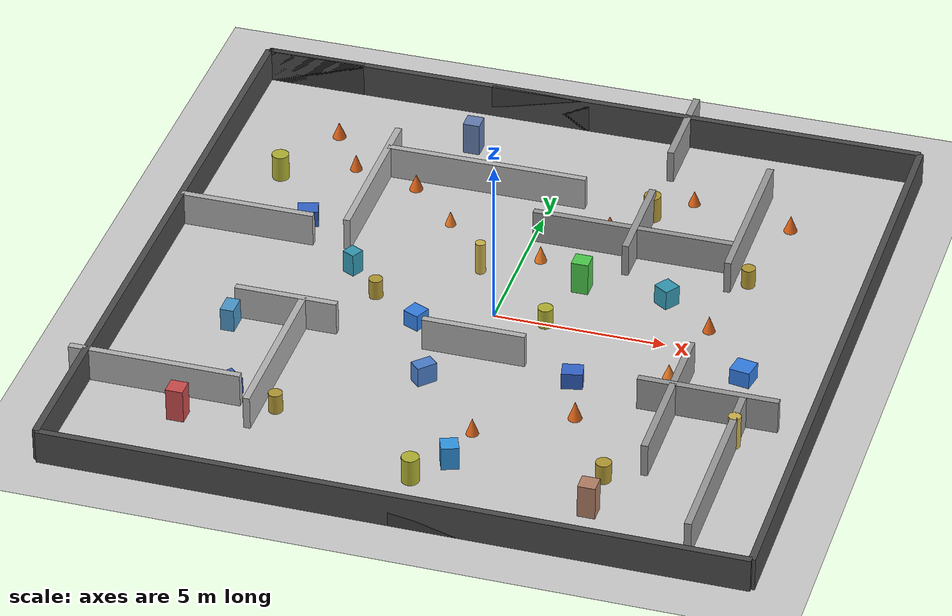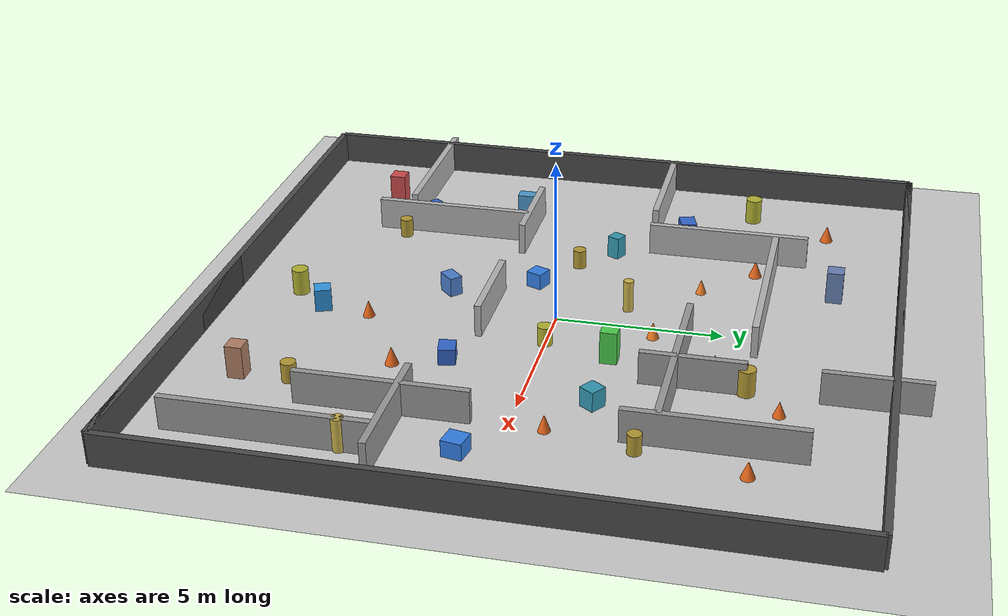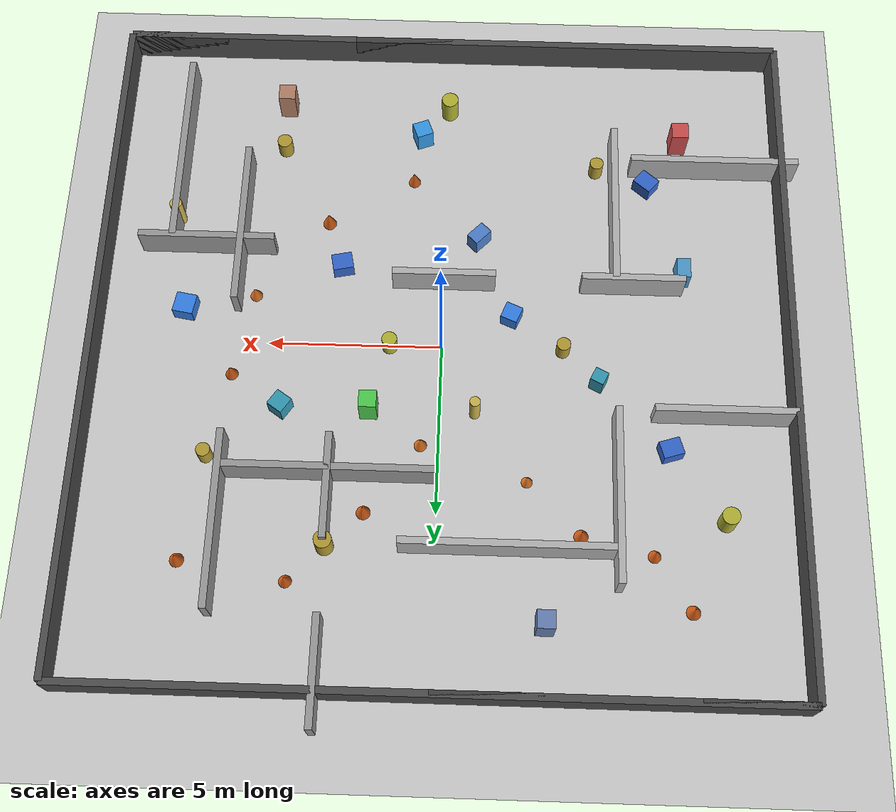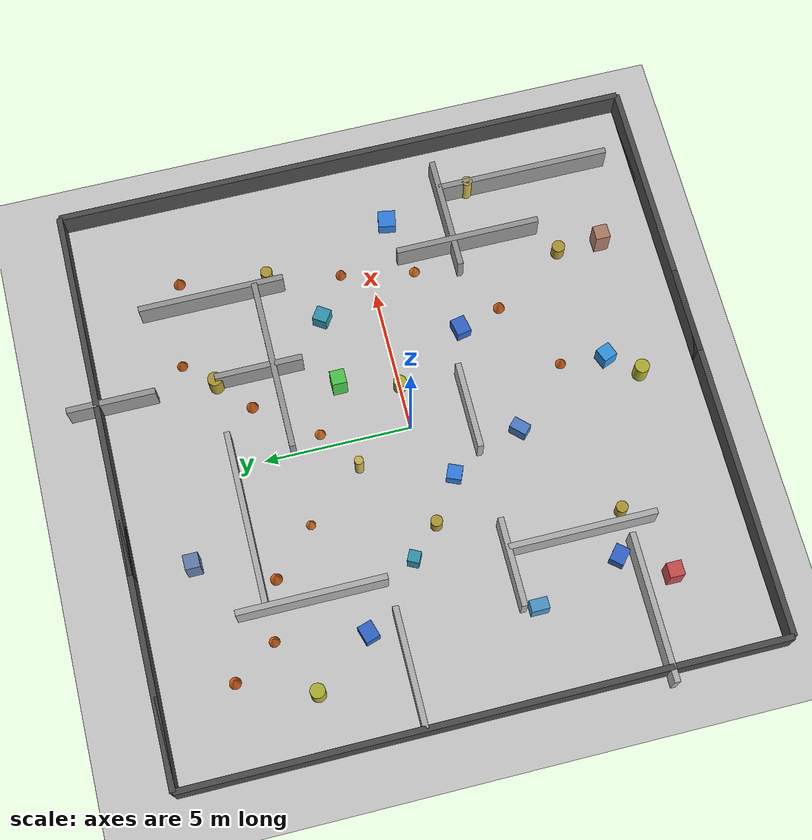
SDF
<?xml version="1.0" ?>
<sdf version="1.10">
  <world name="empty_with_lidar">

    <!-- Plugins -->
    <plugin filename="libgz-sim-physics-system.so" name="gz::sim::systems::Physics"/>
    <plugin filename="libgz-sim-user-commands-system.so" name="gz::sim::systems::UserCommands"/>
    <plugin filename="libgz-sim-scene-broadcaster-system.so" name="gz::sim::systems::SceneBroadcaster"/>
    <plugin filename="libgz-sim-imu-system.so" name="gz::sim::systems::Imu"/>
    <!-- Physics -->
    <physics name="1ms" type="ignored">
      <max_step_size>0.001</max_step_size>
      <real_time_factor>1.0</real_time_factor>
    </physics>

    <!-- Lighting -->
    <light type="directional" name="sun">
      <cast_shadows>true</cast_shadows>
      <pose>0 0 10 0 0 0</pose>
      <diffuse>0.8 0.8 0.8 1</diffuse>
      <specular>0.2 0.2 0.2 1</specular>
      <direction>-0.5 0.1 -0.9</direction>
    </light>

    <!-- Ground -->
    <model name='ground_plane'>
      <static>true</static>
      <link name='link'>
        <collision name='collision'>
          <geometry>
            <plane>
              <normal>0 0 1</normal>
              <size>100 100</size>
            </plane>
          </geometry>
          <surface>
            <friction>
              <ode>
                <mu>50</mu>
              </ode>
            </friction>
            <bounce/>
            <contact/>
          </surface>
        </collision>
        <visual name='visual'>
          <geometry>
            <plane>
              <normal>0 0 1</normal>
              <size>100 100</size>
            </plane>
          </geometry>
          <material>
            <ambient>0.800000012 0.800000012 0.800000012 1</ambient>
            <diffuse>0.800000012 0.800000012 0.800000012 1</diffuse>
            <specular>0.800000012 0.800000012 0.800000012 1</specular>
          </material>
        </visual>
        <pose>0 0 0 0 0 0</pose>
        <inertial>
          <pose>0 0 0 0 0 0</pose>
          <mass>1</mass>
          <inertia>
            <ixx>1</ixx>
            <ixy>0</ixy>
            <ixz>0</ixz>
            <iyy>1</iyy>
            <iyz>0</iyz>
            <izz>1</izz>
          </inertia>
        </inertial>
        <enable_wind>false</enable_wind>
      </link>
      <pose>0 0 0 0 0 0</pose>
      <self_collide>false</self_collide>
    </model>

    <!-- Maze -->
    <model name="maze_env">
      <static>true</static>

      <!-- Perimeter walls -->
      <link name="wall_north"><pose>0 10 0.5 0 0 0</pose><collision name="col"><geometry><box><size>20 0.2 1</size></box></geometry></collision><visual name="vis"><geometry><box><size>20 0.2 1</size></box></geometry><material><diffuse>0.3 0.3 0.3 1</diffuse></material></visual></link>
      <link name="wall_south"><pose>0 -10 0.5 0 0 0</pose><collision name="col"><geometry><box><size>20 0.2 1</size></box></geometry></collision><visual name="vis"><geometry><box><size>20 0.2 1</size></box></geometry><material><diffuse>0.3 0.3 0.3 1</diffuse></material></visual></link>
      <link name="wall_east"><pose>10 0 0.5 0 0 0</pose><collision name="col"><geometry><box><size>0.2 20 1</size></box></geometry></collision><visual name="vis"><geometry><box><size>0.2 20 1</size></box></geometry><material><diffuse>0.3 0.3 0.3 1</diffuse></material></visual></link>
      <link name="wall_west"><pose>-10 0 0.5 0 0 0</pose><collision name="col"><geometry><box><size>0.2 20 1</size></box></geometry></collision><visual name="vis"><geometry><box><size>0.2 20 1</size></box></geometry><material><diffuse>0.3 0.3 0.3 1</diffuse></material></visual></link>

      <!-- Entrance gaps -->
      <link name="north_stub_left"><pose>-8.5 10 0.5 0 0 0</pose><collision name="col"><geometry><box><size>3 0.2 1</size></box></geometry></collision><visual name="vis"><geometry><box><size>3 0.2 1</size></box></geometry><material><diffuse>0.25 0.25 0.25 1</diffuse></material></visual></link>
      <link name="north_stub_right"><pose>-1.5 10 0.5 0 0 0</pose><collision name="col"><geometry><box><size>3 0.2 1</size></box></geometry></collision><visual name="vis"><geometry><box><size>3 0.2 1</size></box></geometry><material><diffuse>0.25 0.25 0.25 1</diffuse></material></visual></link>
      <link name="south_stub_left"><pose>1.5 -10 0.5 0 0 0</pose><collision name="col"><geometry><box><size>3 0.2 1</size></box></geometry></collision><visual name="vis"><geometry><box><size>3 0.2 1</size></box></geometry><material><diffuse>0.25 0.25 0.25 1</diffuse></material></visual></link>
      <link name="south_stub_right"><pose>8.5 -10 0.5 0 0 0</pose><collision name="col"><geometry><box><size>3 0.2 1</size></box></geometry></collision><visual name="vis"><geometry><box><size>3 0.2 1</size></box></geometry><material><diffuse>0.25 0.25 0.25 1</diffuse></material></visual></link>

      <!-- Internal walls (with gaps) -->
      <link name="inner_vert_spine_top"><pose>-5 4.5 0.5 0 0 0</pose><collision name="col"><geometry><box><size>0.2 5 1</size></box></geometry></collision><visual name="vis"><geometry><box><size>0.2 5 1</size></box></geometry><material><diffuse>0.7 0.7 0.7 1</diffuse></material></visual></link>
      <link name="inner_vert_spine_bottom"><pose>-5 -4.5 0.5 0 0 0</pose><collision name="col"><geometry><box><size>0.2 5 1</size></box></geometry></collision><visual name="vis"><geometry><box><size>0.2 5 1</size></box></geometry><material><diffuse>0.7 0.7 0.7 1</diffuse></material></visual></link>

      <link name="h1"><pose>-2 6 0.5 0 0 0</pose><collision name="col"><geometry><box><size>6 0.2 1</size></box></geometry></collision><visual name="vis"><geometry><box><size>6 0.2 1</size></box></geometry><material><diffuse>0.7 0.7 0.7 1</diffuse></material></visual></link>
      <link name="h2"><pose>-8 2 0.5 0 0 0</pose><collision name="col"><geometry><box><size>4 0.2 1</size></box></geometry></collision><visual name="vis"><geometry><box><size>4 0.2 1</size></box></geometry><material><diffuse>0.7 0.7 0.7 1</diffuse></material></visual></link>
      <link name="h3_left"><pose>-5.5 -2 0.5 0 0 0</pose><collision name="col"><geometry><box><size>3 0.2 1</size></box></geometry></collision><visual name="vis"><geometry><box><size>3 0.2 1</size></box></geometry><material><diffuse>0.7 0.7 0.7 1</diffuse></material></visual></link>
      <link name="h3_right"><pose>0 -2 0.5 0 0 0</pose><collision name="col"><geometry><box><size>3 0.2 1</size></box></geometry></collision><visual name="vis"><geometry><box><size>3 0.2 1</size></box></geometry><material><diffuse>0.7 0.7 0.7 1</diffuse></material></visual></link>
      <link name="h4"><pose>-8 -6 0.5 0 0 0</pose><collision name="col"><geometry><box><size>5 0.2 1</size></box></geometry></collision><visual name="vis"><geometry><box><size>5 0.2 1</size></box></geometry><material><diffuse>0.7 0.7 0.7 1</diffuse></material></visual></link>

      <link name="right_vert1_top">
        <pose>3 9.5 0.5 0 0 0</pose>
        <collision name="col"><geometry><box><size>0.2 3 1</size></box></geometry></collision>
        <visual name="vis"><geometry><box><size>0.2 3 1</size></box></geometry><material><diffuse>0.6 0.6 0.6 1</diffuse></material></visual>
      </link>

      <link name="right_vert1_bottom">
        <pose>3 4.5 0.5 0 0 0</pose>
        <collision name="col"><geometry><box><size>0.2 3 1</size></box></geometry></collision>
        <visual name="vis"><geometry><box><size>0.2 3 1</size></box></geometry><material><diffuse>0.6 0.6 0.6 1</diffuse></material></visual>
      </link>

      <link name="right_vert2_top"><pose>6 5.5 0.5 0 0 0</pose><collision name="col"><geometry><box><size>0.2 5 1</size></box></geometry></collision><visual name="vis"><geometry><box><size>0.2 5 1</size></box></geometry><material><diffuse>0.6 0.6 0.6 1</diffuse></material></visual></link>
      <link name="right_vert2_bottom"><pose>6 -3.5 0.5 0 0 0</pose><collision name="col"><geometry><box><size>0.2 5 1</size></box></geometry></collision><visual name="vis"><geometry><box><size>0.2 5 1</size></box></geometry><material><diffuse>0.6 0.6 0.6 1</diffuse></material></visual></link>
      <link name="right_h1"><pose>3 4 0.5 0 0 0</pose><collision name="col"><geometry><box><size>6 0.2 1</size></box></geometry></collision><visual name="vis"><geometry><box><size>6 0.2 1</size></box></geometry><material><diffuse>0.6 0.6 0.6 1</diffuse></material></visual></link>
      <link name="right_h2"><pose>7 -3 0.5 0 0 0</pose><collision name="col"><geometry><box><size>4 0.2 1</size></box></geometry></collision><visual name="vis"><geometry><box><size>4 0.2 1</size></box></geometry><material><diffuse>0.6 0.6 0.6 1</diffuse></material></visual></link>
      <link name="right_vert3"><pose>8 -6 0.5 0 0 0</pose><collision name="col"><geometry><box><size>0.2 6 1</size></box></geometry></collision><visual name="vis"><geometry><box><size>0.2 6 1</size></box></geometry><material><diffuse>0.6 0.6 0.6 1</diffuse></material></visual></link>

      <!-- Pillars (landmarks) -->
      <link name="pillar1"><pose>-3 8 0.5 0 0 0</pose><collision name="col"><geometry><box><size>0.5 0.5 1</size></box></geometry></collision><visual name="vis"><geometry><box><size>0.5 0.5 1</size></box></geometry><material><diffuse>0.4 0.5 0.7 1</diffuse></material></visual></link>
      <link name="pillar2"><pose>5 -8 0.5 0 0 0</pose><collision name="col"><geometry><box><size>0.5 0.5 1</size></box></geometry></collision><visual name="vis"><geometry><box><size>0.5 0.5 1</size></box></geometry><material><diffuse>0.7 0.5 0.4 1</diffuse></material></visual></link>
      <link name="pillar3"><pose>-7 -7 0.5 0 0 0</pose><collision name="col"><geometry><box><size>0.5 0.5 1</size></box></geometry></collision><visual name="vis"><geometry><box><size>0.5 0.5 1</size></box></geometry><material><diffuse>0.8 0.3 0.3 1</diffuse></material></visual></link>
      <link name="pillar4"><pose>2 2 0.5 0 0 0</pose><collision name="col"><geometry><box><size>0.5 0.5 1</size></box></geometry></collision><visual name="vis"><geometry><box><size>0.5 0.5 1</size></box></geometry><material><diffuse>0.3 0.8 0.3 1</diffuse></material></visual></link>
    </model>

    <!-- Dense landmarks pack: cones, boxes, cylinders -->
    <model name="landmarks_dense">
      <static>true</static>

      <!-- Cones -->
      <link name="cone_01"><pose>-7.0 7.5 0.25 0 0 0</pose><collision name="col"><geometry><cone><radius>0.20</radius><length>0.50</length></cone></geometry></collision><visual name="vis"><geometry><cone><radius>0.20</radius><length>0.50</length></cone></geometry><material><diffuse>0.9 0.4 0.1 1</diffuse></material></visual></link>
      <link name="cone_02"><pose>-6.0 6.0 0.25 0 0 0.6</pose><collision name="col"><geometry><cone><radius>0.18</radius><length>0.50</length></cone></geometry></collision><visual name="vis"><geometry><cone><radius>0.18</radius><length>0.50</length></cone></geometry><material><diffuse>0.9 0.4 0.1 1</diffuse></material></visual></link>
      <link name="cone_03"><pose>-4.0 5.5 0.25 0 0 1.1</pose><collision name="col"><geometry><cone><radius>0.20</radius><length>0.50</length></cone></geometry></collision><visual name="vis"><geometry><cone><radius>0.20</radius><length>0.50</length></cone></geometry><material><diffuse>0.9 0.4 0.1 1</diffuse></material></visual></link>
      <link name="cone_04"><pose>-2.5 4.0 0.25 0 0 -0.5</pose><collision name="col"><geometry><cone><radius>0.16</radius><length>0.45</length></cone></geometry></collision><visual name="vis"><geometry><cone><radius>0.16</radius><length>0.45</length></cone></geometry><material><diffuse>0.95 0.5 0.15 1</diffuse></material></visual></link>
      <link name="cone_05"><pose>0.5 3.0 0.25 0 0 0.3</pose><collision name="col"><geometry><cone><radius>0.18</radius><length>0.50</length></cone></geometry></collision><visual name="vis"><geometry><cone><radius>0.18</radius><length>0.50</length></cone></geometry><material><diffuse>0.95 0.5 0.15 1</diffuse></material></visual></link>
      <link name="cone_06"><pose>2.0 5.0 0.25 0 0 1.2</pose><collision name="col"><geometry><cone><radius>0.20</radius><length>0.55</length></cone></geometry></collision><visual name="vis"><geometry><cone><radius>0.20</radius><length>0.55</length></cone></geometry><material><diffuse>0.9 0.4 0.1 1</diffuse></material></visual></link>
      <link name="cone_07"><pose>4.0 7.0 0.25 0 0 -0.9</pose><collision name="col"><geometry><cone><radius>0.18</radius><length>0.45</length></cone></geometry></collision><visual name="vis"><geometry><cone><radius>0.18</radius><length>0.45</length></cone></geometry><material><diffuse>0.9 0.4 0.1 1</diffuse></material></visual></link>
      <link name="cone_08"><pose>7.0 6.5 0.25 0 0 0.4</pose><collision name="col"><geometry><cone><radius>0.20</radius><length>0.50</length></cone></geometry></collision><visual name="vis"><geometry><cone><radius>0.20</radius><length>0.50</length></cone></geometry><material><diffuse>0.9 0.4 0.1 1</diffuse></material></visual></link>
      <link name="cone_09"><pose>6.0 1.0 0.25 0 0 -0.2</pose><collision name="col"><geometry><cone><radius>0.18</radius><length>0.50</length></cone></geometry></collision><visual name="vis"><geometry><cone><radius>0.18</radius><length>0.50</length></cone></geometry><material><diffuse>0.9 0.4 0.1 1</diffuse></material></visual></link>
      <link name="cone_10"><pose>5.5 -1.5 0.25 0 0 0.9</pose><collision name="col"><geometry><cone><radius>0.18</radius><length>0.45</length></cone></geometry></collision><visual name="vis"><geometry><cone><radius>0.18</radius><length>0.45</length></cone></geometry><material><diffuse>0.95 0.5 0.15 1</diffuse></material></visual></link>
      <link name="cone_11"><pose>3.5 -4.0 0.25 0 0 -0.7</pose><collision name="col"><geometry><cone><radius>0.20</radius><length>0.55</length></cone></geometry></collision><visual name="vis"><geometry><cone><radius>0.20</radius><length>0.55</length></cone></geometry><material><diffuse>0.9 0.4 0.1 1</diffuse></material></visual></link>
      <link name="cone_12"><pose>1.0 -5.5 0.25 0 0 0.2</pose><collision name="col"><geometry><cone><radius>0.18</radius><length>0.50</length></cone></geometry></collision><visual name="vis"><geometry><cone><radius>0.18</radius><length>0.50</length></cone></geometry><material><diffuse>0.9 0.4 0.1 1</diffuse></material></visual></link>

      <!-- Boxes -->
      <link name="box_01"><pose>-6.5 3.0 0.25 0 0 0.3</pose><collision name="col"><geometry><box><size>0.6 0.5 0.5</size></box></geometry></collision><visual name="vis"><geometry><box><size>0.6 0.5 0.5</size></box></geometry><material><diffuse>0.2 0.4 0.8 1</diffuse></material></visual></link>
      <link name="box_02"><pose>-4.5 1.0 0.35 0 0 1.1</pose><collision name="col"><geometry><box><size>0.4 0.4 0.7</size></box></geometry></collision><visual name="vis"><geometry><box><size>0.4 0.4 0.7</size></box></geometry><material><diffuse>0.2 0.6 0.7 1</diffuse></material></visual></link>
      <link name="box_03"><pose>-2.0 -1.0 0.25 0 0 -0.4</pose><collision name="col"><geometry><box><size>0.5 0.5 0.5</size></box></geometry></collision><visual name="vis"><geometry><box><size>0.5 0.5 0.5</size></box></geometry><material><diffuse>0.2 0.5 0.9 1</diffuse></material></visual></link>
      <link name="box_04"><pose>-1.0 -3.5 0.30 0 0 0.8</pose><collision name="col"><geometry><box><size>0.6 0.4 0.6</size></box></geometry></collision><visual name="vis"><geometry><box><size>0.6 0.4 0.6</size></box></geometry><material><diffuse>0.3 0.5 0.8 1</diffuse></material></visual></link>
      <link name="box_05"><pose>0.8 -7.0 0.35 0 0 -1.2</pose><collision name="col"><geometry><box><size>0.5 0.5 0.7</size></box></geometry></collision><visual name="vis"><geometry><box><size>0.5 0.5 0.7</size></box></geometry><material><diffuse>0.2 0.6 0.9 1</diffuse></material></visual></link>
      <link name="box_06"><pose>3.0 -2.5 0.25 0 0 0.2</pose><collision name="col"><geometry><box><size>0.6 0.5 0.5</size></box></geometry></collision><visual name="vis"><geometry><box><size>0.6 0.5 0.5</size></box></geometry><material><diffuse>0.2 0.4 0.8 1</diffuse></material></visual></link>
      <link name="box_07"><pose>4.5 2.0 0.30 0 0 -0.6</pose><collision name="col"><geometry><box><size>0.5 0.5 0.6</size></box></geometry></collision><visual name="vis"><geometry><box><size>0.5 0.5 0.6</size></box></geometry><material><diffuse>0.2 0.6 0.7 1</diffuse></material></visual></link>
      <link name="box_08"><pose>7.5 -1.0 0.25 0 0 1.4</pose><collision name="col"><geometry><box><size>0.6 0.6 0.5</size></box></geometry></collision><visual name="vis"><geometry><box><size>0.6 0.6 0.5</size></box></geometry><material><diffuse>0.2 0.5 0.9 1</diffuse></material></visual></link>
      <link name="box_09"><pose>-7.0 -2.5 0.35 0 0 0.0</pose><collision name="col"><geometry><box><size>0.4 0.6 0.7</size></box></geometry></collision><visual name="vis"><geometry><box><size>0.4 0.6 0.7</size></box></geometry><material><diffuse>0.3 0.6 0.8 1</diffuse></material></visual></link>
      <link name="box_10"><pose>-6.0 -5.5 0.25 0 0 -0.7</pose><collision name="col"><geometry><box><size>0.6 0.5 0.5</size></box></geometry></collision><visual name="vis"><geometry><box><size>0.6 0.5 0.5</size></box></geometry><material><diffuse>0.2 0.4 0.8 1</diffuse></material></visual></link>

      <!-- Cylinders -->
      <link name="cyl_01"><pose>-8.0 5.0 0.4 0 0 0</pose><collision name="col"><geometry><cylinder><radius>0.25</radius><length>0.8</length></cylinder></geometry></collision><visual name="vis"><geometry><cylinder><radius>0.25</radius><length>0.8</length></cylinder></geometry><material><diffuse>0.7 0.7 0.2 1</diffuse></material></visual></link>
      <link name="cyl_02"><pose>-3.5 0.0 0.3 0 0 0</pose><collision name="col"><geometry><cylinder><radius>0.20</radius><length>0.6</length></cylinder></geometry></collision><visual name="vis"><geometry><cylinder><radius>0.20</radius><length>0.6</length></cylinder></geometry><material><diffuse>0.7 0.6 0.2 1</diffuse></material></visual></link>
      <link name="cyl_03"><pose>-1.0 2.0 0.5 0 0 0</pose><collision name="col"><geometry><cylinder><radius>0.15</radius><length>1.0</length></cylinder></geometry></collision><visual name="vis"><geometry><cylinder><radius>0.15</radius><length>1.0</length></cylinder></geometry><material><diffuse>0.8 0.7 0.3 1</diffuse></material></visual></link>
      <link name="cyl_04"><pose>1.5 0.0 0.3 0 0 0</pose><collision name="col"><geometry><cylinder><radius>0.22</radius><length>0.6</length></cylinder></geometry></collision><visual name="vis"><geometry><cylinder><radius>0.22</radius><length>0.6</length></cylinder></geometry><material><diffuse>0.7 0.7 0.2 1</diffuse></material></visual></link>
      <link name="cyl_05"><pose>3.0 6.0 0.4 0 0 0</pose><collision name="col"><geometry><cylinder><radius>0.25</radius><length>0.8</length></cylinder></geometry></collision><visual name="vis"><geometry><cylinder><radius>0.25</radius><length>0.8</length></cylinder></geometry><material><diffuse>0.7 0.6 0.2 1</diffuse></material></visual></link>
      <link name="cyl_06"><pose>6.5 3.5 0.3 0 0 0</pose><collision name="col"><geometry><cylinder><radius>0.20</radius><length>0.6</length></cylinder></geometry></collision><visual name="vis"><geometry><cylinder><radius>0.20</radius><length>0.6</length></cylinder></geometry><material><diffuse>0.7 0.6 0.2 1</diffuse></material></visual></link>
      <link name="cyl_07"><pose>8.0 -4.0 0.5 0 0 0</pose><collision name="col"><geometry><cylinder><radius>0.18</radius><length>1.0</length></cylinder></geometry></collision><visual name="vis"><geometry><cylinder><radius>0.18</radius><length>1.0</length></cylinder></geometry><material><diffuse>0.8 0.7 0.3 1</diffuse></material></visual></link>
      <link name="cyl_08"><pose>5.0 -6.5 0.3 0 0 0</pose><collision name="col"><geometry><cylinder><radius>0.22</radius><length>0.6</length></cylinder></geometry></collision><visual name="vis"><geometry><cylinder><radius>0.22</radius><length>0.6</length></cylinder></geometry><material><diffuse>0.7 0.6 0.2 1</diffuse></material></visual></link>
      <link name="cyl_09"><pose>0.0 -8.0 0.4 0 0 0</pose><collision name="col"><geometry><cylinder><radius>0.25</radius><length>0.8</length></cylinder></geometry></collision><visual name="vis"><geometry><cylinder><radius>0.25</radius><length>0.8</length></cylinder></geometry><material><diffuse>0.7 0.7 0.2 1</diffuse></material></visual></link>
      <link name="cyl_10"><pose>-4.5 -6.0 0.3 0 0 0</pose><collision name="col"><geometry><cylinder><radius>0.20</radius><length>0.6</length></cylinder></geometry></collision><visual name="vis"><geometry><cylinder><radius>0.20</radius><length>0.6</length></cylinder></geometry><material><diffuse>0.7 0.6 0.2 1</diffuse></material></visual></link>
    </model>

    <!-- Gravity and magnetic field -->
    <gravity>0 0 -9.8</gravity>
    <magnetic_field>6e-06 2.3e-05 -4.2e-05</magnetic_field>

  </world>
</sdf>
